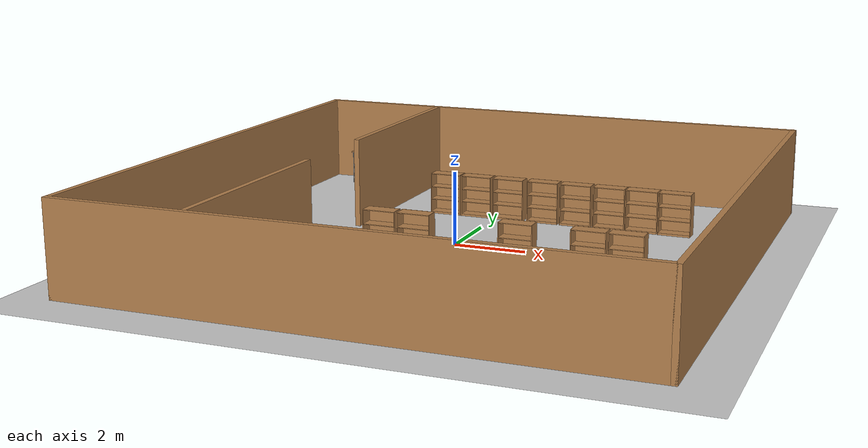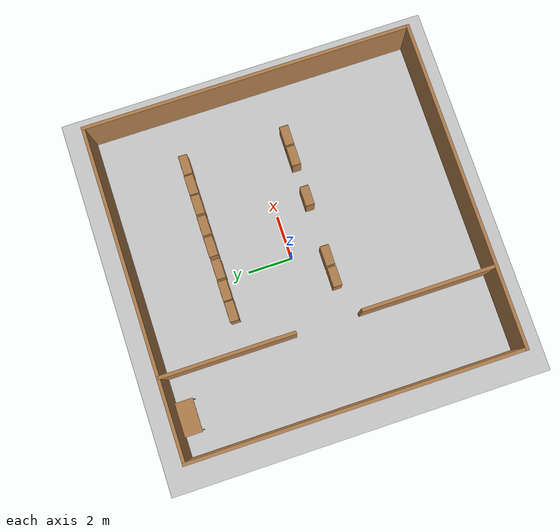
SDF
<sdf version="1.7">
 <world name="default">
  <model name="ground_plane">
   <static>1</static>
   <link name="link">
    <collision name="collision">
     <geometry><plane><normal>0 0 1</normal><size>100 100</size></plane></geometry>
     <surface>
      <contact><collide_bitmask>65535</collide_bitmask></contact>
      <friction><ode><mu>100</mu><mu2>50</mu2></ode></friction>
     </surface>
    </collision>
    <visual name="visual">
     <cast_shadows>0</cast_shadows>
     <geometry><plane><normal>0 0 1</normal><size>100 100</size></plane></geometry>
     <material>
      <script><uri>file://media/materials/scripts/gazebo.material</uri><name>Gazebo/Grey</name></script>
     </material>
    </visual>
   </link>
  </model>
  <model name="lmao1_0">
   <pose>0.44681 -0.57627 0 0 -0 0</pose>
   <link name="Wall_10">
    <collision name="Wall_10_Collision">
     <geometry><box><size>15 0.15 2.5</size></box></geometry>
     <pose>0 0 1.25 0 -0 0</pose>
    </collision>
    <visual name="Wall_10_Visual">
     <pose>0 0 1.25 0 -0 0</pose>
     <geometry><box><size>15 0.15 2.5</size></box></geometry>
     <material>
      <script><uri>file://media/materials/scripts/gazebo.material</uri><name>Gazebo/Wood</name></script>
      <ambient>1 1 1 1</ambient>
     </material>
     <meta><layer>0</layer></meta>
    </visual>
    <pose>7.425 0 0 0 -0 1.5708</pose>
   </link>
   <link name="Wall_12">
    <collision name="Wall_12_Collision">
     <geometry><box><size>15 0.15 2.5</size></box></geometry>
     <pose>0 0 1.25 0 -0 0</pose>
    </collision>
    <visual name="Wall_12_Visual">
     <pose>0 0 1.25 0 -0 0</pose>
     <geometry><box><size>15 0.15 2.5</size></box></geometry>
     <material>
      <script><uri>file://media/materials/scripts/gazebo.material</uri><name>Gazebo/Wood</name></script>
      <ambient>1 1 1 1</ambient>
     </material>
     <meta><layer>0</layer></meta>
    </visual>
    <pose>0 7.425 0 0 -0 3.14159</pose>
   </link>
   <link name="Wall_14">
    <collision name="Wall_14_Collision">
     <geometry><box><size>15 0.15 2.5</size></box></geometry>
     <pose>0 0 1.25 0 -0 0</pose>
    </collision>
    <visual name="Wall_14_Visual">
     <pose>0 0 1.25 0 -0 0</pose>
     <geometry><box><size>15 0.15 2.5</size></box></geometry>
     <material>
      <script><uri>file://media/materials/scripts/gazebo.material</uri><name>Gazebo/Wood</name></script>
      <ambient>1 1 1 1</ambient>
     </material>
     <meta><layer>0</layer></meta>
    </visual>
    <pose>-7.425 0 0 0 -0 1.5708</pose>
   </link>
   <link name="Wall_16">
    <collision name="Wall_16_Collision">
     <geometry><box><size>6 0.15 2.5</size></box></geometry>
     <pose>0 0 1.25 0 -0 0</pose>
    </collision>
    <visual name="Wall_16_Visual">
     <pose>0 0 1.25 0 -0 0</pose>
     <geometry><box><size>6 0.15 2.5</size></box></geometry>
     <material>
      <script><uri>file://media/materials/scripts/gazebo.material</uri><name>Gazebo/Wood</name></script>
      <ambient>1 1 1 1</ambient>
     </material>
     <meta><layer>0</layer></meta>
    </visual>
    <pose>-3.77777 4.42781 0 0 -0 -1.5708</pose>
   </link>
   <link name="Wall_21">
    <collision name="Wall_21_Collision">
     <geometry><box><size>6 0.15 2.5</size></box></geometry>
     <pose>0 0 1.25 0 -0 0</pose>
    </collision>
    <visual name="Wall_21_Visual">
     <pose>0 0 1.25 0 -0 0</pose>
     <geometry><box><size>6 0.15 2.5</size></box></geometry>
     <material>
      <script><uri>file://media/materials/scripts/gazebo.material</uri><name>Gazebo/Wood</name></script>
      <ambient>1 1 1 1</ambient>
     </material>
     <meta><layer>0</layer></meta>
    </visual>
    <pose>-3.77777 -4.44802 0 0 -0 1.5708</pose>
   </link>
   <link name="Wall_8">
    <collision name="Wall_8_Collision">
     <geometry><box><size>15 0.15 2.5</size></box></geometry>
     <pose>0 0 1.25 0 -0 0</pose>
    </collision>
    <visual name="Wall_8_Visual">
     <pose>0 0 1.25 0 -0 0</pose>
     <geometry><box><size>15 0.15 2.5</size></box></geometry>
     <material>
      <script><uri>file://media/materials/scripts/gazebo.material</uri><name>Gazebo/Wood</name></script>
      <ambient>1 1 1 1</ambient>
     </material>
     <meta><layer>0</layer></meta>
    </visual>
    <pose>0 -7.425 0 0 -0 0</pose>
   </link>
   <static>1</static>
  </model>
  <model name="table">
   <static>1</static>
   <link name="link">
    <collision name="surface">
     <pose>0 0 1 0 -0 0</pose>
     <geometry><box><size>1.5 0.8 0.03</size></box></geometry>
     <surface><friction><ode><mu>0.6</mu><mu2>0.6</mu2></ode></friction></surface>
    </collision>
    <visual name="visual1">
     <pose>0 0 1 0 -0 0</pose>
     <geometry><box><size>1.5 0.8 0.03</size></box></geometry>
     <material>
      <script><uri>file://media/materials/scripts/gazebo.material</uri><name>Gazebo/Wood</name></script>
     </material>
    </visual>
    <collision name="front_left_leg">
     <pose>0.68 0.38 0.5 0 -0 0</pose>
     <geometry><cylinder><radius>0.02</radius><length>1</length></cylinder></geometry>
    </collision>
    <visual name="front_left_leg">
     <pose>0.68 0.38 0.5 0 -0 0</pose>
     <geometry><cylinder><radius>0.02</radius><length>1</length></cylinder></geometry>
     <material>
      <script><uri>file://media/materials/scripts/gazebo.material</uri><name>Gazebo/Grey</name></script>
     </material>
    </visual>
    <collision name="front_right_leg">
     <pose>0.68 -0.38 0.5 0 -0 0</pose>
     <geometry><cylinder><radius>0.02</radius><length>1</length></cylinder></geometry>
    </collision>
    <visual name="front_right_leg">
     <pose>0.68 -0.38 0.5 0 -0 0</pose>
     <geometry><cylinder><radius>0.02</radius><length>1</length></cylinder></geometry>
     <material>
      <script><uri>file://media/materials/scripts/gazebo.material</uri><name>Gazebo/Grey</name></script>
     </material>
    </visual>
    <collision name="back_right_leg">
     <pose>-0.68 -0.38 0.5 0 -0 0</pose>
     <geometry><cylinder><radius>0.02</radius><length>1</length></cylinder></geometry>
    </collision>
    <visual name="back_right_leg">
     <pose>-0.68 -0.38 0.5 0 -0 0</pose>
     <geometry><cylinder><radius>0.02</radius><length>1</length></cylinder></geometry>
     <material>
      <script><uri>file://media/materials/scripts/gazebo.material</uri><name>Gazebo/Grey</name></script>
     </material>
    </visual>
    <collision name="back_left_leg">
     <pose>-0.68 0.38 0.5 0 -0 0</pose>
     <geometry><cylinder><radius>0.02</radius><length>1</length></cylinder></geometry>
    </collision>
    <visual name="back_left_leg">
     <pose>-0.68 0.38 0.5 0 -0 0</pose>
     <geometry><cylinder><radius>0.02</radius><length>1</length></cylinder></geometry>
     <material>
      <script><uri>file://media/materials/scripts/gazebo.material</uri><name>Gazebo/Grey</name></script>
     </material>
    </visual>
   </link>
   <pose>-5.24151 6.30081 0 0 -0 0</pose>
  </model>
  <model name="bookshelf">
   <static>1</static>
   <link name="link">
    <inertial><mass>1</mass></inertial>
    <collision name="back">
     <pose>0 0.005 0.6 0 -0 0</pose>
     <geometry><box><size>0.9 0.01 1.2</size></box></geometry>
    </collision>
    <visual name="visual1">
     <pose>0 0.005 0.6 0 -0 0</pose>
     <geometry><box><size>0.9 0.01 1.2</size></box></geometry>
     <material>
      <script><uri>file://media/materials/scripts/gazebo.material</uri><name>Gazebo/Wood</name></script>
     </material>
    </visual>
    <collision name="left_side">
     <pose>0.45 -0.195 0.6 0 -0 0</pose>
     <geometry><box><size>0.02 0.4 1.2</size></box></geometry>
    </collision>
    <visual name="visual2">
     <pose>0.45 -0.195 0.6 0 -0 0</pose>
     <geometry><box><size>0.02 0.4 1.2</size></box></geometry>
     <material>
      <script><uri>file://media/materials/scripts/gazebo.material</uri><name>Gazebo/Wood</name></script>
     </material>
    </visual>
    <collision name="right_side">
     <pose>-0.45 -0.195 0.6 0 -0 0</pose>
     <geometry><box><size>0.02 0.4 1.2</size></box></geometry>
    </collision>
    <visual name="visual3">
     <pose>-0.45 -0.195 0.6 0 -0 0</pose>
     <geometry><box><size>0.02 0.4 1.2</size></box></geometry>
     <material>
      <script><uri>file://media/materials/scripts/gazebo.material</uri><name>Gazebo/Wood</name></script>
     </material>
    </visual>
    <collision name="bottom">
     <pose>0 -0.195 0.03 0 -0 0</pose>
     <geometry><box><size>0.88 0.4 0.06</size></box></geometry>
    </collision>
    <visual name="visual4">
     <pose>0 -0.195 0.03 0 -0 0</pose>
     <geometry><box><size>0.88 0.4 0.06</size></box></geometry>
     <material>
      <script><uri>file://media/materials/scripts/gazebo.material</uri><name>Gazebo/Wood</name></script>
     </material>
    </visual>
    <collision name="top">
     <pose>0 -0.195 1.19 0 -0 0</pose>
     <geometry><box><size>0.88 0.4 0.02</size></box></geometry>
    </collision>
    <visual name="visual5">
     <pose>0 -0.195 1.19 0 -0 0</pose>
     <geometry><box><size>0.88 0.4 0.02</size></box></geometry>
     <material>
      <script><uri>file://media/materials/scripts/gazebo.material</uri><name>Gazebo/Wood</name></script>
     </material>
    </visual>
    <collision name="low_shelf">
     <pose>0 -0.195 0.43 0 -0 0</pose>
     <geometry><box><size>0.88 0.4 0.02</size></box></geometry>
    </collision>
    <visual name="visual6">
     <pose>0 -0.195 0.43 0 -0 0</pose>
     <geometry><box><size>0.88 0.4 0.02</size></box></geometry>
     <material>
      <script><uri>file://media/materials/scripts/gazebo.material</uri><name>Gazebo/Wood</name></script>
     </material>
    </visual>
    <collision name="high_shelf">
     <pose>0 -0.195 0.8 0 -0 0</pose>
     <geometry><box><size>0.88 0.4 0.02</size></box></geometry>
    </collision>
    <visual name="visual7">
     <pose>0 -0.195 0.8 0 -0 0</pose>
     <geometry><box><size>0.88 0.4 0.02</size></box></geometry>
     <material>
      <script><uri>file://media/materials/scripts/gazebo.material</uri><name>Gazebo/Wood</name></script>
     </material>
    </visual>
   </link>
   <pose>-1.517 3.39821 0.008039 0 -0 0</pose>
  </model>
  <model name="bookshelf_clone">
   <static>1</static>
   <link name="link">
    <inertial><mass>1</mass></inertial>
    <collision name="back">
     <pose>0 0.005 0.6 0 -0 0</pose>
     <geometry><box><size>0.9 0.01 1.2</size></box></geometry>
    </collision>
    <visual name="visual1">
     <pose>0 0.005 0.6 0 -0 0</pose>
     <geometry><box><size>0.9 0.01 1.2</size></box></geometry>
     <material>
      <script><uri>file://media/materials/scripts/gazebo.material</uri><name>Gazebo/Wood</name></script>
     </material>
    </visual>
    <collision name="left_side">
     <pose>0.45 -0.195 0.6 0 -0 0</pose>
     <geometry><box><size>0.02 0.4 1.2</size></box></geometry>
    </collision>
    <visual name="visual2">
     <pose>0.45 -0.195 0.6 0 -0 0</pose>
     <geometry><box><size>0.02 0.4 1.2</size></box></geometry>
     <material>
      <script><uri>file://media/materials/scripts/gazebo.material</uri><name>Gazebo/Wood</name></script>
     </material>
    </visual>
    <collision name="right_side">
     <pose>-0.45 -0.195 0.6 0 -0 0</pose>
     <geometry><box><size>0.02 0.4 1.2</size></box></geometry>
    </collision>
    <visual name="visual3">
     <pose>-0.45 -0.195 0.6 0 -0 0</pose>
     <geometry><box><size>0.02 0.4 1.2</size></box></geometry>
     <material>
      <script><uri>file://media/materials/scripts/gazebo.material</uri><name>Gazebo/Wood</name></script>
     </material>
    </visual>
    <collision name="bottom">
     <pose>0 -0.195 0.03 0 -0 0</pose>
     <geometry><box><size>0.88 0.4 0.06</size></box></geometry>
    </collision>
    <visual name="visual4">
     <pose>0 -0.195 0.03 0 -0 0</pose>
     <geometry><box><size>0.88 0.4 0.06</size></box></geometry>
     <material>
      <script><uri>file://media/materials/scripts/gazebo.material</uri><name>Gazebo/Wood</name></script>
     </material>
    </visual>
    <collision name="top">
     <pose>0 -0.195 1.19 0 -0 0</pose>
     <geometry><box><size>0.88 0.4 0.02</size></box></geometry>
    </collision>
    <visual name="visual5">
     <pose>0 -0.195 1.19 0 -0 0</pose>
     <geometry><box><size>0.88 0.4 0.02</size></box></geometry>
     <material>
      <script><uri>file://media/materials/scripts/gazebo.material</uri><name>Gazebo/Wood</name></script>
     </material>
    </visual>
    <collision name="low_shelf">
     <pose>0 -0.195 0.43 0 -0 0</pose>
     <geometry><box><size>0.88 0.4 0.02</size></box></geometry>
    </collision>
    <visual name="visual6">
     <pose>0 -0.195 0.43 0 -0 0</pose>
     <geometry><box><size>0.88 0.4 0.02</size></box></geometry>
     <material>
      <script><uri>file://media/materials/scripts/gazebo.material</uri><name>Gazebo/Wood</name></script>
     </material>
    </visual>
    <collision name="high_shelf">
     <pose>0 -0.195 0.8 0 -0 0</pose>
     <geometry><box><size>0.88 0.4 0.02</size></box></geometry>
    </collision>
    <visual name="visual7">
     <pose>0 -0.195 0.8 0 -0 0</pose>
     <geometry><box><size>0.88 0.4 0.02</size></box></geometry>
     <material>
      <script><uri>file://media/materials/scripts/gazebo.material</uri><name>Gazebo/Wood</name></script>
     </material>
    </visual>
   </link>
   <pose>-0.568869 3.40329 0.008039 0 -0 0</pose>
  </model>
  <model name="bookshelf_clone_0">
   <static>1</static>
   <link name="link">
    <inertial><mass>1</mass></inertial>
    <collision name="back">
     <pose>0 0.005 0.6 0 -0 0</pose>
     <geometry><box><size>0.9 0.01 1.2</size></box></geometry>
    </collision>
    <visual name="visual1">
     <pose>0 0.005 0.6 0 -0 0</pose>
     <geometry><box><size>0.9 0.01 1.2</size></box></geometry>
     <material>
      <script><uri>file://media/materials/scripts/gazebo.material</uri><name>Gazebo/Wood</name></script>
     </material>
    </visual>
    <collision name="left_side">
     <pose>0.45 -0.195 0.6 0 -0 0</pose>
     <geometry><box><size>0.02 0.4 1.2</size></box></geometry>
    </collision>
    <visual name="visual2">
     <pose>0.45 -0.195 0.6 0 -0 0</pose>
     <geometry><box><size>0.02 0.4 1.2</size></box></geometry>
     <material>
      <script><uri>file://media/materials/scripts/gazebo.material</uri><name>Gazebo/Wood</name></script>
     </material>
    </visual>
    <collision name="right_side">
     <pose>-0.45 -0.195 0.6 0 -0 0</pose>
     <geometry><box><size>0.02 0.4 1.2</size></box></geometry>
    </collision>
    <visual name="visual3">
     <pose>-0.45 -0.195 0.6 0 -0 0</pose>
     <geometry><box><size>0.02 0.4 1.2</size></box></geometry>
     <material>
      <script><uri>file://media/materials/scripts/gazebo.material</uri><name>Gazebo/Wood</name></script>
     </material>
    </visual>
    <collision name="bottom">
     <pose>0 -0.195 0.03 0 -0 0</pose>
     <geometry><box><size>0.88 0.4 0.06</size></box></geometry>
    </collision>
    <visual name="visual4">
     <pose>0 -0.195 0.03 0 -0 0</pose>
     <geometry><box><size>0.88 0.4 0.06</size></box></geometry>
     <material>
      <script><uri>file://media/materials/scripts/gazebo.material</uri><name>Gazebo/Wood</name></script>
     </material>
    </visual>
    <collision name="top">
     <pose>0 -0.195 1.19 0 -0 0</pose>
     <geometry><box><size>0.88 0.4 0.02</size></box></geometry>
    </collision>
    <visual name="visual5">
     <pose>0 -0.195 1.19 0 -0 0</pose>
     <geometry><box><size>0.88 0.4 0.02</size></box></geometry>
     <material>
      <script><uri>file://media/materials/scripts/gazebo.material</uri><name>Gazebo/Wood</name></script>
     </material>
    </visual>
    <collision name="low_shelf">
     <pose>0 -0.195 0.43 0 -0 0</pose>
     <geometry><box><size>0.88 0.4 0.02</size></box></geometry>
    </collision>
    <visual name="visual6">
     <pose>0 -0.195 0.43 0 -0 0</pose>
     <geometry><box><size>0.88 0.4 0.02</size></box></geometry>
     <material>
      <script><uri>file://media/materials/scripts/gazebo.material</uri><name>Gazebo/Wood</name></script>
     </material>
    </visual>
    <collision name="high_shelf">
     <pose>0 -0.195 0.8 0 -0 0</pose>
     <geometry><box><size>0.88 0.4 0.02</size></box></geometry>
    </collision>
    <visual name="visual7">
     <pose>0 -0.195 0.8 0 -0 0</pose>
     <geometry><box><size>0.88 0.4 0.02</size></box></geometry>
     <material>
      <script><uri>file://media/materials/scripts/gazebo.material</uri><name>Gazebo/Wood</name></script>
     </material>
    </visual>
   </link>
   <pose>0.417185 3.39118 0.008039 0 -0 0</pose>
  </model>
  <model name="bookshelf_clone_1">
   <static>1</static>
   <link name="link">
    <inertial><mass>1</mass></inertial>
    <collision name="back">
     <pose>0 0.005 0.6 0 -0 0</pose>
     <geometry><box><size>0.9 0.01 1.2</size></box></geometry>
    </collision>
    <visual name="visual1">
     <pose>0 0.005 0.6 0 -0 0</pose>
     <geometry><box><size>0.9 0.01 1.2</size></box></geometry>
     <material>
      <script><uri>file://media/materials/scripts/gazebo.material</uri><name>Gazebo/Wood</name></script>
     </material>
    </visual>
    <collision name="left_side">
     <pose>0.45 -0.195 0.6 0 -0 0</pose>
     <geometry><box><size>0.02 0.4 1.2</size></box></geometry>
    </collision>
    <visual name="visual2">
     <pose>0.45 -0.195 0.6 0 -0 0</pose>
     <geometry><box><size>0.02 0.4 1.2</size></box></geometry>
     <material>
      <script><uri>file://media/materials/scripts/gazebo.material</uri><name>Gazebo/Wood</name></script>
     </material>
    </visual>
    <collision name="right_side">
     <pose>-0.45 -0.195 0.6 0 -0 0</pose>
     <geometry><box><size>0.02 0.4 1.2</size></box></geometry>
    </collision>
    <visual name="visual3">
     <pose>-0.45 -0.195 0.6 0 -0 0</pose>
     <geometry><box><size>0.02 0.4 1.2</size></box></geometry>
     <material>
      <script><uri>file://media/materials/scripts/gazebo.material</uri><name>Gazebo/Wood</name></script>
     </material>
    </visual>
    <collision name="bottom">
     <pose>0 -0.195 0.03 0 -0 0</pose>
     <geometry><box><size>0.88 0.4 0.06</size></box></geometry>
    </collision>
    <visual name="visual4">
     <pose>0 -0.195 0.03 0 -0 0</pose>
     <geometry><box><size>0.88 0.4 0.06</size></box></geometry>
     <material>
      <script><uri>file://media/materials/scripts/gazebo.material</uri><name>Gazebo/Wood</name></script>
     </material>
    </visual>
    <collision name="top">
     <pose>0 -0.195 1.19 0 -0 0</pose>
     <geometry><box><size>0.88 0.4 0.02</size></box></geometry>
    </collision>
    <visual name="visual5">
     <pose>0 -0.195 1.19 0 -0 0</pose>
     <geometry><box><size>0.88 0.4 0.02</size></box></geometry>
     <material>
      <script><uri>file://media/materials/scripts/gazebo.material</uri><name>Gazebo/Wood</name></script>
     </material>
    </visual>
    <collision name="low_shelf">
     <pose>0 -0.195 0.43 0 -0 0</pose>
     <geometry><box><size>0.88 0.4 0.02</size></box></geometry>
    </collision>
    <visual name="visual6">
     <pose>0 -0.195 0.43 0 -0 0</pose>
     <geometry><box><size>0.88 0.4 0.02</size></box></geometry>
     <material>
      <script><uri>file://media/materials/scripts/gazebo.material</uri><name>Gazebo/Wood</name></script>
     </material>
    </visual>
    <collision name="high_shelf">
     <pose>0 -0.195 0.8 0 -0 0</pose>
     <geometry><box><size>0.88 0.4 0.02</size></box></geometry>
    </collision>
    <visual name="visual7">
     <pose>0 -0.195 0.8 0 -0 0</pose>
     <geometry><box><size>0.88 0.4 0.02</size></box></geometry>
     <material>
      <script><uri>file://media/materials/scripts/gazebo.material</uri><name>Gazebo/Wood</name></script>
     </material>
    </visual>
   </link>
   <pose>1.46048 3.40395 0.008039 0 -0 0</pose>
  </model>
  <model name="bookshelf_clone_2">
   <static>1</static>
   <link name="link">
    <inertial><mass>1</mass></inertial>
    <collision name="back">
     <pose>0 0.005 0.6 0 -0 0</pose>
     <geometry><box><size>0.9 0.01 1.2</size></box></geometry>
    </collision>
    <visual name="visual1">
     <pose>0 0.005 0.6 0 -0 0</pose>
     <geometry><box><size>0.9 0.01 1.2</size></box></geometry>
     <material>
      <script><uri>file://media/materials/scripts/gazebo.material</uri><name>Gazebo/Wood</name></script>
     </material>
    </visual>
    <collision name="left_side">
     <pose>0.45 -0.195 0.6 0 -0 0</pose>
     <geometry><box><size>0.02 0.4 1.2</size></box></geometry>
    </collision>
    <visual name="visual2">
     <pose>0.45 -0.195 0.6 0 -0 0</pose>
     <geometry><box><size>0.02 0.4 1.2</size></box></geometry>
     <material>
      <script><uri>file://media/materials/scripts/gazebo.material</uri><name>Gazebo/Wood</name></script>
     </material>
    </visual>
    <collision name="right_side">
     <pose>-0.45 -0.195 0.6 0 -0 0</pose>
     <geometry><box><size>0.02 0.4 1.2</size></box></geometry>
    </collision>
    <visual name="visual3">
     <pose>-0.45 -0.195 0.6 0 -0 0</pose>
     <geometry><box><size>0.02 0.4 1.2</size></box></geometry>
     <material>
      <script><uri>file://media/materials/scripts/gazebo.material</uri><name>Gazebo/Wood</name></script>
     </material>
    </visual>
    <collision name="bottom">
     <pose>0 -0.195 0.03 0 -0 0</pose>
     <geometry><box><size>0.88 0.4 0.06</size></box></geometry>
    </collision>
    <visual name="visual4">
     <pose>0 -0.195 0.03 0 -0 0</pose>
     <geometry><box><size>0.88 0.4 0.06</size></box></geometry>
     <material>
      <script><uri>file://media/materials/scripts/gazebo.material</uri><name>Gazebo/Wood</name></script>
     </material>
    </visual>
    <collision name="top">
     <pose>0 -0.195 1.19 0 -0 0</pose>
     <geometry><box><size>0.88 0.4 0.02</size></box></geometry>
    </collision>
    <visual name="visual5">
     <pose>0 -0.195 1.19 0 -0 0</pose>
     <geometry><box><size>0.88 0.4 0.02</size></box></geometry>
     <material>
      <script><uri>file://media/materials/scripts/gazebo.material</uri><name>Gazebo/Wood</name></script>
     </material>
    </visual>
    <collision name="low_shelf">
     <pose>0 -0.195 0.43 0 -0 0</pose>
     <geometry><box><size>0.88 0.4 0.02</size></box></geometry>
    </collision>
    <visual name="visual6">
     <pose>0 -0.195 0.43 0 -0 0</pose>
     <geometry><box><size>0.88 0.4 0.02</size></box></geometry>
     <material>
      <script><uri>file://media/materials/scripts/gazebo.material</uri><name>Gazebo/Wood</name></script>
     </material>
    </visual>
    <collision name="high_shelf">
     <pose>0 -0.195 0.8 0 -0 0</pose>
     <geometry><box><size>0.88 0.4 0.02</size></box></geometry>
    </collision>
    <visual name="visual7">
     <pose>0 -0.195 0.8 0 -0 0</pose>
     <geometry><box><size>0.88 0.4 0.02</size></box></geometry>
     <material>
      <script><uri>file://media/materials/scripts/gazebo.material</uri><name>Gazebo/Wood</name></script>
     </material>
    </visual>
   </link>
   <pose>2.44199 3.40428 0.008039 0 -0 0</pose>
  </model>
  <model name="bookshelf_clone_3">
   <static>1</static>
   <link name="link">
    <inertial><mass>1</mass></inertial>
    <collision name="back">
     <pose>0 0.005 0.6 0 -0 0</pose>
     <geometry><box><size>0.9 0.01 1.2</size></box></geometry>
    </collision>
    <visual name="visual1">
     <pose>0 0.005 0.6 0 -0 0</pose>
     <geometry><box><size>0.9 0.01 1.2</size></box></geometry>
     <material>
      <script><uri>file://media/materials/scripts/gazebo.material</uri><name>Gazebo/Wood</name></script>
     </material>
    </visual>
    <collision name="left_side">
     <pose>0.45 -0.195 0.6 0 -0 0</pose>
     <geometry><box><size>0.02 0.4 1.2</size></box></geometry>
    </collision>
    <visual name="visual2">
     <pose>0.45 -0.195 0.6 0 -0 0</pose>
     <geometry><box><size>0.02 0.4 1.2</size></box></geometry>
     <material>
      <script><uri>file://media/materials/scripts/gazebo.material</uri><name>Gazebo/Wood</name></script>
     </material>
    </visual>
    <collision name="right_side">
     <pose>-0.45 -0.195 0.6 0 -0 0</pose>
     <geometry><box><size>0.02 0.4 1.2</size></box></geometry>
    </collision>
    <visual name="visual3">
     <pose>-0.45 -0.195 0.6 0 -0 0</pose>
     <geometry><box><size>0.02 0.4 1.2</size></box></geometry>
     <material>
      <script><uri>file://media/materials/scripts/gazebo.material</uri><name>Gazebo/Wood</name></script>
     </material>
    </visual>
    <collision name="bottom">
     <pose>0 -0.195 0.03 0 -0 0</pose>
     <geometry><box><size>0.88 0.4 0.06</size></box></geometry>
    </collision>
    <visual name="visual4">
     <pose>0 -0.195 0.03 0 -0 0</pose>
     <geometry><box><size>0.88 0.4 0.06</size></box></geometry>
     <material>
      <script><uri>file://media/materials/scripts/gazebo.material</uri><name>Gazebo/Wood</name></script>
     </material>
    </visual>
    <collision name="top">
     <pose>0 -0.195 1.19 0 -0 0</pose>
     <geometry><box><size>0.88 0.4 0.02</size></box></geometry>
    </collision>
    <visual name="visual5">
     <pose>0 -0.195 1.19 0 -0 0</pose>
     <geometry><box><size>0.88 0.4 0.02</size></box></geometry>
     <material>
      <script><uri>file://media/materials/scripts/gazebo.material</uri><name>Gazebo/Wood</name></script>
     </material>
    </visual>
    <collision name="low_shelf">
     <pose>0 -0.195 0.43 0 -0 0</pose>
     <geometry><box><size>0.88 0.4 0.02</size></box></geometry>
    </collision>
    <visual name="visual6">
     <pose>0 -0.195 0.43 0 -0 0</pose>
     <geometry><box><size>0.88 0.4 0.02</size></box></geometry>
     <material>
      <script><uri>file://media/materials/scripts/gazebo.material</uri><name>Gazebo/Wood</name></script>
     </material>
    </visual>
    <collision name="high_shelf">
     <pose>0 -0.195 0.8 0 -0 0</pose>
     <geometry><box><size>0.88 0.4 0.02</size></box></geometry>
    </collision>
    <visual name="visual7">
     <pose>0 -0.195 0.8 0 -0 0</pose>
     <geometry><box><size>0.88 0.4 0.02</size></box></geometry>
     <material>
      <script><uri>file://media/materials/scripts/gazebo.material</uri><name>Gazebo/Wood</name></script>
     </material>
    </visual>
   </link>
   <pose>3.42459 3.39874 0.008039 0 -0 0</pose>
  </model>
  <model name="bookshelf_clone_4">
   <static>1</static>
   <link name="link">
    <inertial><mass>1</mass></inertial>
    <collision name="back">
     <pose>0 0.005 0.6 0 -0 0</pose>
     <geometry><box><size>0.9 0.01 1.2</size></box></geometry>
    </collision>
    <visual name="visual1">
     <pose>0 0.005 0.6 0 -0 0</pose>
     <geometry><box><size>0.9 0.01 1.2</size></box></geometry>
     <material>
      <script><uri>file://media/materials/scripts/gazebo.material</uri><name>Gazebo/Wood</name></script>
     </material>
    </visual>
    <collision name="left_side">
     <pose>0.45 -0.195 0.6 0 -0 0</pose>
     <geometry><box><size>0.02 0.4 1.2</size></box></geometry>
    </collision>
    <visual name="visual2">
     <pose>0.45 -0.195 0.6 0 -0 0</pose>
     <geometry><box><size>0.02 0.4 1.2</size></box></geometry>
     <material>
      <script><uri>file://media/materials/scripts/gazebo.material</uri><name>Gazebo/Wood</name></script>
     </material>
    </visual>
    <collision name="right_side">
     <pose>-0.45 -0.195 0.6 0 -0 0</pose>
     <geometry><box><size>0.02 0.4 1.2</size></box></geometry>
    </collision>
    <visual name="visual3">
     <pose>-0.45 -0.195 0.6 0 -0 0</pose>
     <geometry><box><size>0.02 0.4 1.2</size></box></geometry>
     <material>
      <script><uri>file://media/materials/scripts/gazebo.material</uri><name>Gazebo/Wood</name></script>
     </material>
    </visual>
    <collision name="bottom">
     <pose>0 -0.195 0.03 0 -0 0</pose>
     <geometry><box><size>0.88 0.4 0.06</size></box></geometry>
    </collision>
    <visual name="visual4">
     <pose>0 -0.195 0.03 0 -0 0</pose>
     <geometry><box><size>0.88 0.4 0.06</size></box></geometry>
     <material>
      <script><uri>file://media/materials/scripts/gazebo.material</uri><name>Gazebo/Wood</name></script>
     </material>
    </visual>
    <collision name="top">
     <pose>0 -0.195 1.19 0 -0 0</pose>
     <geometry><box><size>0.88 0.4 0.02</size></box></geometry>
    </collision>
    <visual name="visual5">
     <pose>0 -0.195 1.19 0 -0 0</pose>
     <geometry><box><size>0.88 0.4 0.02</size></box></geometry>
     <material>
      <script><uri>file://media/materials/scripts/gazebo.material</uri><name>Gazebo/Wood</name></script>
     </material>
    </visual>
    <collision name="low_shelf">
     <pose>0 -0.195 0.43 0 -0 0</pose>
     <geometry><box><size>0.88 0.4 0.02</size></box></geometry>
    </collision>
    <visual name="visual6">
     <pose>0 -0.195 0.43 0 -0 0</pose>
     <geometry><box><size>0.88 0.4 0.02</size></box></geometry>
     <material>
      <script><uri>file://media/materials/scripts/gazebo.material</uri><name>Gazebo/Wood</name></script>
     </material>
    </visual>
    <collision name="high_shelf">
     <pose>0 -0.195 0.8 0 -0 0</pose>
     <geometry><box><size>0.88 0.4 0.02</size></box></geometry>
    </collision>
    <visual name="visual7">
     <pose>0 -0.195 0.8 0 -0 0</pose>
     <geometry><box><size>0.88 0.4 0.02</size></box></geometry>
     <material>
      <script><uri>file://media/materials/scripts/gazebo.material</uri><name>Gazebo/Wood</name></script>
     </material>
    </visual>
   </link>
   <pose>4.36374 3.39911 0.008039 0 -0 0</pose>
  </model>
  <model name="bookshelf_clone_5">
   <static>1</static>
   <link name="link">
    <inertial><mass>1</mass></inertial>
    <collision name="back">
     <pose>0 0.005 0.6 0 -0 0</pose>
     <geometry><box><size>0.9 0.01 1.2</size></box></geometry>
    </collision>
    <visual name="visual1">
     <pose>0 0.005 0.6 0 -0 0</pose>
     <geometry><box><size>0.9 0.01 1.2</size></box></geometry>
     <material>
      <script><uri>file://media/materials/scripts/gazebo.material</uri><name>Gazebo/Wood</name></script>
     </material>
    </visual>
    <collision name="left_side">
     <pose>0.45 -0.195 0.6 0 -0 0</pose>
     <geometry><box><size>0.02 0.4 1.2</size></box></geometry>
    </collision>
    <visual name="visual2">
     <pose>0.45 -0.195 0.6 0 -0 0</pose>
     <geometry><box><size>0.02 0.4 1.2</size></box></geometry>
     <material>
      <script><uri>file://media/materials/scripts/gazebo.material</uri><name>Gazebo/Wood</name></script>
     </material>
    </visual>
    <collision name="right_side">
     <pose>-0.45 -0.195 0.6 0 -0 0</pose>
     <geometry><box><size>0.02 0.4 1.2</size></box></geometry>
    </collision>
    <visual name="visual3">
     <pose>-0.45 -0.195 0.6 0 -0 0</pose>
     <geometry><box><size>0.02 0.4 1.2</size></box></geometry>
     <material>
      <script><uri>file://media/materials/scripts/gazebo.material</uri><name>Gazebo/Wood</name></script>
     </material>
    </visual>
    <collision name="bottom">
     <pose>0 -0.195 0.03 0 -0 0</pose>
     <geometry><box><size>0.88 0.4 0.06</size></box></geometry>
    </collision>
    <visual name="visual4">
     <pose>0 -0.195 0.03 0 -0 0</pose>
     <geometry><box><size>0.88 0.4 0.06</size></box></geometry>
     <material>
      <script><uri>file://media/materials/scripts/gazebo.material</uri><name>Gazebo/Wood</name></script>
     </material>
    </visual>
    <collision name="top">
     <pose>0 -0.195 1.19 0 -0 0</pose>
     <geometry><box><size>0.88 0.4 0.02</size></box></geometry>
    </collision>
    <visual name="visual5">
     <pose>0 -0.195 1.19 0 -0 0</pose>
     <geometry><box><size>0.88 0.4 0.02</size></box></geometry>
     <material>
      <script><uri>file://media/materials/scripts/gazebo.material</uri><name>Gazebo/Wood</name></script>
     </material>
    </visual>
    <collision name="low_shelf">
     <pose>0 -0.195 0.43 0 -0 0</pose>
     <geometry><box><size>0.88 0.4 0.02</size></box></geometry>
    </collision>
    <visual name="visual6">
     <pose>0 -0.195 0.43 0 -0 0</pose>
     <geometry><box><size>0.88 0.4 0.02</size></box></geometry>
     <material>
      <script><uri>file://media/materials/scripts/gazebo.material</uri><name>Gazebo/Wood</name></script>
     </material>
    </visual>
    <collision name="high_shelf">
     <pose>0 -0.195 0.8 0 -0 0</pose>
     <geometry><box><size>0.88 0.4 0.02</size></box></geometry>
    </collision>
    <visual name="visual7">
     <pose>0 -0.195 0.8 0 -0 0</pose>
     <geometry><box><size>0.88 0.4 0.02</size></box></geometry>
     <material>
      <script><uri>file://media/materials/scripts/gazebo.material</uri><name>Gazebo/Wood</name></script>
     </material>
    </visual>
   </link>
   <pose>5.3063 3.38241 0.008039 0 -0 0</pose>
  </model>
  <model name="bookshelf_clone_6">
   <static>1</static>
   <link name="link">
    <inertial><mass>1</mass></inertial>
    <collision name="back">
     <pose>0 0.005 0.6 0 -0 0</pose>
     <geometry><box><size>0.9 0.01 1.2</size></box></geometry>
    </collision>
    <visual name="visual1">
     <pose>0 0.005 0.6 0 -0 0</pose>
     <geometry><box><size>0.9 0.01 1.2</size></box></geometry>
     <material>
      <script><uri>file://media/materials/scripts/gazebo.material</uri><name>Gazebo/Wood</name></script>
     </material>
    </visual>
    <collision name="left_side">
     <pose>0.45 -0.195 0.6 0 -0 0</pose>
     <geometry><box><size>0.02 0.4 1.2</size></box></geometry>
    </collision>
    <visual name="visual2">
     <pose>0.45 -0.195 0.6 0 -0 0</pose>
     <geometry><box><size>0.02 0.4 1.2</size></box></geometry>
     <material>
      <script><uri>file://media/materials/scripts/gazebo.material</uri><name>Gazebo/Wood</name></script>
     </material>
    </visual>
    <collision name="right_side">
     <pose>-0.45 -0.195 0.6 0 -0 0</pose>
     <geometry><box><size>0.02 0.4 1.2</size></box></geometry>
    </collision>
    <visual name="visual3">
     <pose>-0.45 -0.195 0.6 0 -0 0</pose>
     <geometry><box><size>0.02 0.4 1.2</size></box></geometry>
     <material>
      <script><uri>file://media/materials/scripts/gazebo.material</uri><name>Gazebo/Wood</name></script>
     </material>
    </visual>
    <collision name="bottom">
     <pose>0 -0.195 0.03 0 -0 0</pose>
     <geometry><box><size>0.88 0.4 0.06</size></box></geometry>
    </collision>
    <visual name="visual4">
     <pose>0 -0.195 0.03 0 -0 0</pose>
     <geometry><box><size>0.88 0.4 0.06</size></box></geometry>
     <material>
      <script><uri>file://media/materials/scripts/gazebo.material</uri><name>Gazebo/Wood</name></script>
     </material>
    </visual>
    <collision name="top">
     <pose>0 -0.195 1.19 0 -0 0</pose>
     <geometry><box><size>0.88 0.4 0.02</size></box></geometry>
    </collision>
    <visual name="visual5">
     <pose>0 -0.195 1.19 0 -0 0</pose>
     <geometry><box><size>0.88 0.4 0.02</size></box></geometry>
     <material>
      <script><uri>file://media/materials/scripts/gazebo.material</uri><name>Gazebo/Wood</name></script>
     </material>
    </visual>
    <collision name="low_shelf">
     <pose>0 -0.195 0.43 0 -0 0</pose>
     <geometry><box><size>0.88 0.4 0.02</size></box></geometry>
    </collision>
    <visual name="visual6">
     <pose>0 -0.195 0.43 0 -0 0</pose>
     <geometry><box><size>0.88 0.4 0.02</size></box></geometry>
     <material>
      <script><uri>file://media/materials/scripts/gazebo.material</uri><name>Gazebo/Wood</name></script>
     </material>
    </visual>
    <collision name="high_shelf">
     <pose>0 -0.195 0.8 0 -0 0</pose>
     <geometry><box><size>0.88 0.4 0.02</size></box></geometry>
    </collision>
    <visual name="visual7">
     <pose>0 -0.195 0.8 0 -0 0</pose>
     <geometry><box><size>0.88 0.4 0.02</size></box></geometry>
     <material>
      <script><uri>file://media/materials/scripts/gazebo.material</uri><name>Gazebo/Wood</name></script>
     </material>
    </visual>
   </link>
   <pose>-1.48051 -1.30706 0.008039 0 -0 0</pose>
  </model>
  <model name="bookshelf_clone_7">
   <static>1</static>
   <link name="link">
    <inertial><mass>1</mass></inertial>
    <collision name="back">
     <pose>0 0.005 0.6 0 -0 0</pose>
     <geometry><box><size>0.9 0.01 1.2</size></box></geometry>
    </collision>
    <visual name="visual1">
     <pose>0 0.005 0.6 0 -0 0</pose>
     <geometry><box><size>0.9 0.01 1.2</size></box></geometry>
     <material>
      <script><uri>file://media/materials/scripts/gazebo.material</uri><name>Gazebo/Wood</name></script>
     </material>
    </visual>
    <collision name="left_side">
     <pose>0.45 -0.195 0.6 0 -0 0</pose>
     <geometry><box><size>0.02 0.4 1.2</size></box></geometry>
    </collision>
    <visual name="visual2">
     <pose>0.45 -0.195 0.6 0 -0 0</pose>
     <geometry><box><size>0.02 0.4 1.2</size></box></geometry>
     <material>
      <script><uri>file://media/materials/scripts/gazebo.material</uri><name>Gazebo/Wood</name></script>
     </material>
    </visual>
    <collision name="right_side">
     <pose>-0.45 -0.195 0.6 0 -0 0</pose>
     <geometry><box><size>0.02 0.4 1.2</size></box></geometry>
    </collision>
    <visual name="visual3">
     <pose>-0.45 -0.195 0.6 0 -0 0</pose>
     <geometry><box><size>0.02 0.4 1.2</size></box></geometry>
     <material>
      <script><uri>file://media/materials/scripts/gazebo.material</uri><name>Gazebo/Wood</name></script>
     </material>
    </visual>
    <collision name="bottom">
     <pose>0 -0.195 0.03 0 -0 0</pose>
     <geometry><box><size>0.88 0.4 0.06</size></box></geometry>
    </collision>
    <visual name="visual4">
     <pose>0 -0.195 0.03 0 -0 0</pose>
     <geometry><box><size>0.88 0.4 0.06</size></box></geometry>
     <material>
      <script><uri>file://media/materials/scripts/gazebo.material</uri><name>Gazebo/Wood</name></script>
     </material>
    </visual>
    <collision name="top">
     <pose>0 -0.195 1.19 0 -0 0</pose>
     <geometry><box><size>0.88 0.4 0.02</size></box></geometry>
    </collision>
    <visual name="visual5">
     <pose>0 -0.195 1.19 0 -0 0</pose>
     <geometry><box><size>0.88 0.4 0.02</size></box></geometry>
     <material>
      <script><uri>file://media/materials/scripts/gazebo.material</uri><name>Gazebo/Wood</name></script>
     </material>
    </visual>
    <collision name="low_shelf">
     <pose>0 -0.195 0.43 0 -0 0</pose>
     <geometry><box><size>0.88 0.4 0.02</size></box></geometry>
    </collision>
    <visual name="visual6">
     <pose>0 -0.195 0.43 0 -0 0</pose>
     <geometry><box><size>0.88 0.4 0.02</size></box></geometry>
     <material>
      <script><uri>file://media/materials/scripts/gazebo.material</uri><name>Gazebo/Wood</name></script>
     </material>
    </visual>
    <collision name="high_shelf">
     <pose>0 -0.195 0.8 0 -0 0</pose>
     <geometry><box><size>0.88 0.4 0.02</size></box></geometry>
    </collision>
    <visual name="visual7">
     <pose>0 -0.195 0.8 0 -0 0</pose>
     <geometry><box><size>0.88 0.4 0.02</size></box></geometry>
     <material>
      <script><uri>file://media/materials/scripts/gazebo.material</uri><name>Gazebo/Wood</name></script>
     </material>
    </visual>
   </link>
   <pose>-0.503727 -1.30175 0.008039 0 -0 0</pose>
  </model>
  <model name="bookshelf_clone_10">
   <static>1</static>
   <link name="link">
    <inertial><mass>1</mass></inertial>
    <collision name="back">
     <pose>0 0.005 0.6 0 -0 0</pose>
     <geometry><box><size>0.9 0.01 1.2</size></box></geometry>
    </collision>
    <visual name="visual1">
     <pose>0 0.005 0.6 0 -0 0</pose>
     <geometry><box><size>0.9 0.01 1.2</size></box></geometry>
     <material>
      <script><uri>file://media/materials/scripts/gazebo.material</uri><name>Gazebo/Wood</name></script>
     </material>
    </visual>
    <collision name="left_side">
     <pose>0.45 -0.195 0.6 0 -0 0</pose>
     <geometry><box><size>0.02 0.4 1.2</size></box></geometry>
    </collision>
    <visual name="visual2">
     <pose>0.45 -0.195 0.6 0 -0 0</pose>
     <geometry><box><size>0.02 0.4 1.2</size></box></geometry>
     <material>
      <script><uri>file://media/materials/scripts/gazebo.material</uri><name>Gazebo/Wood</name></script>
     </material>
    </visual>
    <collision name="right_side">
     <pose>-0.45 -0.195 0.6 0 -0 0</pose>
     <geometry><box><size>0.02 0.4 1.2</size></box></geometry>
    </collision>
    <visual name="visual3">
     <pose>-0.45 -0.195 0.6 0 -0 0</pose>
     <geometry><box><size>0.02 0.4 1.2</size></box></geometry>
     <material>
      <script><uri>file://media/materials/scripts/gazebo.material</uri><name>Gazebo/Wood</name></script>
     </material>
    </visual>
    <collision name="bottom">
     <pose>0 -0.195 0.03 0 -0 0</pose>
     <geometry><box><size>0.88 0.4 0.06</size></box></geometry>
    </collision>
    <visual name="visual4">
     <pose>0 -0.195 0.03 0 -0 0</pose>
     <geometry><box><size>0.88 0.4 0.06</size></box></geometry>
     <material>
      <script><uri>file://media/materials/scripts/gazebo.material</uri><name>Gazebo/Wood</name></script>
     </material>
    </visual>
    <collision name="top">
     <pose>0 -0.195 1.19 0 -0 0</pose>
     <geometry><box><size>0.88 0.4 0.02</size></box></geometry>
    </collision>
    <visual name="visual5">
     <pose>0 -0.195 1.19 0 -0 0</pose>
     <geometry><box><size>0.88 0.4 0.02</size></box></geometry>
     <material>
      <script><uri>file://media/materials/scripts/gazebo.material</uri><name>Gazebo/Wood</name></script>
     </material>
    </visual>
    <collision name="low_shelf">
     <pose>0 -0.195 0.43 0 -0 0</pose>
     <geometry><box><size>0.88 0.4 0.02</size></box></geometry>
    </collision>
    <visual name="visual6">
     <pose>0 -0.195 0.43 0 -0 0</pose>
     <geometry><box><size>0.88 0.4 0.02</size></box></geometry>
     <material>
      <script><uri>file://media/materials/scripts/gazebo.material</uri><name>Gazebo/Wood</name></script>
     </material>
    </visual>
    <collision name="high_shelf">
     <pose>0 -0.195 0.8 0 -0 0</pose>
     <geometry><box><size>0.88 0.4 0.02</size></box></geometry>
    </collision>
    <visual name="visual7">
     <pose>0 -0.195 0.8 0 -0 0</pose>
     <geometry><box><size>0.88 0.4 0.02</size></box></geometry>
     <material>
      <script><uri>file://media/materials/scripts/gazebo.material</uri><name>Gazebo/Wood</name></script>
     </material>
    </visual>
   </link>
   <pose>2.29306 -1.2987 0.008039 0 -0 0</pose>
  </model>
  <model name="bookshelf_clone_12">
   <static>1</static>
   <link name="link">
    <inertial><mass>1</mass></inertial>
    <collision name="back">
     <pose>0 0.005 0.6 0 -0 0</pose>
     <geometry><box><size>0.9 0.01 1.2</size></box></geometry>
    </collision>
    <visual name="visual1">
     <pose>0 0.005 0.6 0 -0 0</pose>
     <geometry><box><size>0.9 0.01 1.2</size></box></geometry>
     <material>
      <script><uri>file://media/materials/scripts/gazebo.material</uri><name>Gazebo/Wood</name></script>
     </material>
    </visual>
    <collision name="left_side">
     <pose>0.45 -0.195 0.6 0 -0 0</pose>
     <geometry><box><size>0.02 0.4 1.2</size></box></geometry>
    </collision>
    <visual name="visual2">
     <pose>0.45 -0.195 0.6 0 -0 0</pose>
     <geometry><box><size>0.02 0.4 1.2</size></box></geometry>
     <material>
      <script><uri>file://media/materials/scripts/gazebo.material</uri><name>Gazebo/Wood</name></script>
     </material>
    </visual>
    <collision name="right_side">
     <pose>-0.45 -0.195 0.6 0 -0 0</pose>
     <geometry><box><size>0.02 0.4 1.2</size></box></geometry>
    </collision>
    <visual name="visual3">
     <pose>-0.45 -0.195 0.6 0 -0 0</pose>
     <geometry><box><size>0.02 0.4 1.2</size></box></geometry>
     <material>
      <script><uri>file://media/materials/scripts/gazebo.material</uri><name>Gazebo/Wood</name></script>
     </material>
    </visual>
    <collision name="bottom">
     <pose>0 -0.195 0.03 0 -0 0</pose>
     <geometry><box><size>0.88 0.4 0.06</size></box></geometry>
    </collision>
    <visual name="visual4">
     <pose>0 -0.195 0.03 0 -0 0</pose>
     <geometry><box><size>0.88 0.4 0.06</size></box></geometry>
     <material>
      <script><uri>file://media/materials/scripts/gazebo.material</uri><name>Gazebo/Wood</name></script>
     </material>
    </visual>
    <collision name="top">
     <pose>0 -0.195 1.19 0 -0 0</pose>
     <geometry><box><size>0.88 0.4 0.02</size></box></geometry>
    </collision>
    <visual name="visual5">
     <pose>0 -0.195 1.19 0 -0 0</pose>
     <geometry><box><size>0.88 0.4 0.02</size></box></geometry>
     <material>
      <script><uri>file://media/materials/scripts/gazebo.material</uri><name>Gazebo/Wood</name></script>
     </material>
    </visual>
    <collision name="low_shelf">
     <pose>0 -0.195 0.43 0 -0 0</pose>
     <geometry><box><size>0.88 0.4 0.02</size></box></geometry>
    </collision>
    <visual name="visual6">
     <pose>0 -0.195 0.43 0 -0 0</pose>
     <geometry><box><size>0.88 0.4 0.02</size></box></geometry>
     <material>
      <script><uri>file://media/materials/scripts/gazebo.material</uri><name>Gazebo/Wood</name></script>
     </material>
    </visual>
    <collision name="high_shelf">
     <pose>0 -0.195 0.8 0 -0 0</pose>
     <geometry><box><size>0.88 0.4 0.02</size></box></geometry>
    </collision>
    <visual name="visual7">
     <pose>0 -0.195 0.8 0 -0 0</pose>
     <geometry><box><size>0.88 0.4 0.02</size></box></geometry>
     <material>
      <script><uri>file://media/materials/scripts/gazebo.material</uri><name>Gazebo/Wood</name></script>
     </material>
    </visual>
   </link>
   <pose>4.20819 -1.29727 0.008039 0 -0 0</pose>
  </model>
  <model name="bookshelf_clone_13">
   <static>1</static>
   <link name="link">
    <inertial><mass>1</mass></inertial>
    <collision name="back">
     <pose>0 0.005 0.6 0 -0 0</pose>
     <geometry><box><size>0.9 0.01 1.2</size></box></geometry>
    </collision>
    <visual name="visual1">
     <pose>0 0.005 0.6 0 -0 0</pose>
     <geometry><box><size>0.9 0.01 1.2</size></box></geometry>
     <material>
      <script><uri>file://media/materials/scripts/gazebo.material</uri><name>Gazebo/Wood</name></script>
     </material>
    </visual>
    <collision name="left_side">
     <pose>0.45 -0.195 0.6 0 -0 0</pose>
     <geometry><box><size>0.02 0.4 1.2</size></box></geometry>
    </collision>
    <visual name="visual2">
     <pose>0.45 -0.195 0.6 0 -0 0</pose>
     <geometry><box><size>0.02 0.4 1.2</size></box></geometry>
     <material>
      <script><uri>file://media/materials/scripts/gazebo.material</uri><name>Gazebo/Wood</name></script>
     </material>
    </visual>
    <collision name="right_side">
     <pose>-0.45 -0.195 0.6 0 -0 0</pose>
     <geometry><box><size>0.02 0.4 1.2</size></box></geometry>
    </collision>
    <visual name="visual3">
     <pose>-0.45 -0.195 0.6 0 -0 0</pose>
     <geometry><box><size>0.02 0.4 1.2</size></box></geometry>
     <material>
      <script><uri>file://media/materials/scripts/gazebo.material</uri><name>Gazebo/Wood</name></script>
     </material>
    </visual>
    <collision name="bottom">
     <pose>0 -0.195 0.03 0 -0 0</pose>
     <geometry><box><size>0.88 0.4 0.06</size></box></geometry>
    </collision>
    <visual name="visual4">
     <pose>0 -0.195 0.03 0 -0 0</pose>
     <geometry><box><size>0.88 0.4 0.06</size></box></geometry>
     <material>
      <script><uri>file://media/materials/scripts/gazebo.material</uri><name>Gazebo/Wood</name></script>
     </material>
    </visual>
    <collision name="top">
     <pose>0 -0.195 1.19 0 -0 0</pose>
     <geometry><box><size>0.88 0.4 0.02</size></box></geometry>
    </collision>
    <visual name="visual5">
     <pose>0 -0.195 1.19 0 -0 0</pose>
     <geometry><box><size>0.88 0.4 0.02</size></box></geometry>
     <material>
      <script><uri>file://media/materials/scripts/gazebo.material</uri><name>Gazebo/Wood</name></script>
     </material>
    </visual>
    <collision name="low_shelf">
     <pose>0 -0.195 0.43 0 -0 0</pose>
     <geometry><box><size>0.88 0.4 0.02</size></box></geometry>
    </collision>
    <visual name="visual6">
     <pose>0 -0.195 0.43 0 -0 0</pose>
     <geometry><box><size>0.88 0.4 0.02</size></box></geometry>
     <material>
      <script><uri>file://media/materials/scripts/gazebo.material</uri><name>Gazebo/Wood</name></script>
     </material>
    </visual>
    <collision name="high_shelf">
     <pose>0 -0.195 0.8 0 -0 0</pose>
     <geometry><box><size>0.88 0.4 0.02</size></box></geometry>
    </collision>
    <visual name="visual7">
     <pose>0 -0.195 0.8 0 -0 0</pose>
     <geometry><box><size>0.88 0.4 0.02</size></box></geometry>
     <material>
      <script><uri>file://media/materials/scripts/gazebo.material</uri><name>Gazebo/Wood</name></script>
     </material>
    </visual>
   </link>
   <pose>5.17664 -1.30345 0.008039 0 -0 0</pose>
  </model>
 </world>
</sdf>
